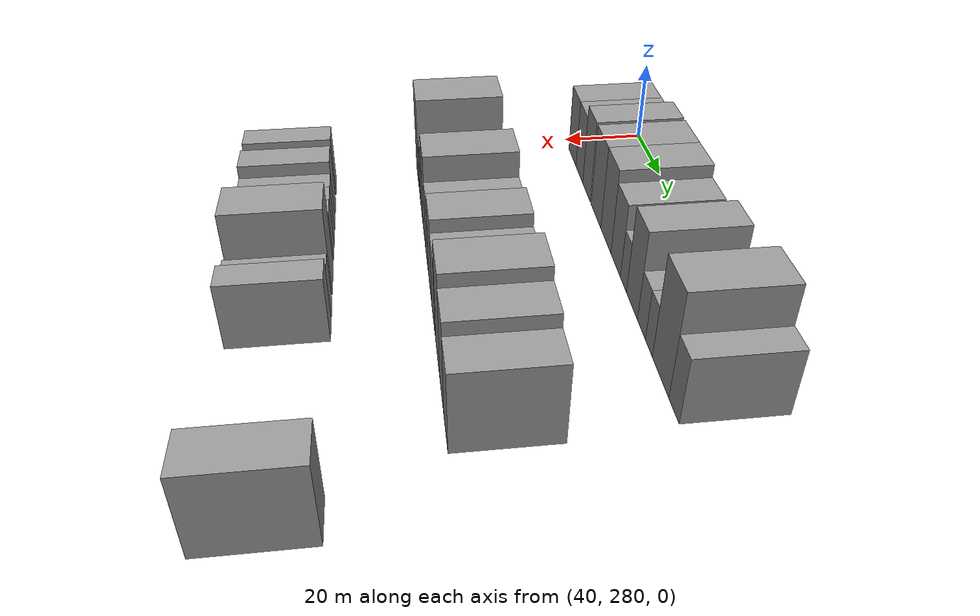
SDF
<sdf version="1.6">
 <world name="default">
  <model name="building_71">
   <static>1</static>
   <pose>50.0000 289.5243 0 0.000000 0.000000 0.000000</pose>
   <link name="link">
    <pose>0 0 9.00 0 0 0</pose>
    <collision name="collision"><geometry><box><size>20.0000 8.9375 18.0000</size></box></geometry></collision>
    <visual name="visual">
     <cast_shadows>0</cast_shadows>
     <geometry><box><size>20.0000 8.9375 18.0000</size></box></geometry>
     <material>
      <script>
       <uri>model://grey_wall/materials/scripts</uri>
       <uri>model://grey_wall/materials/textures</uri>
       <name>vrc/grey_wall</name>
      </script>
     </material>
    </visual>
   </link>
  </model>
  <model name="building_72">
   <static>1</static>
   <pose>50.0000 298.1298 0 0.000000 0.000000 0.000000</pose>
   <link name="link">
    <pose>0 0 9.00 0 0 0</pose>
    <collision name="collision"><geometry><box><size>20.0000 8.2735 18.0000</size></box></geometry></collision>
    <visual name="visual">
     <cast_shadows>0</cast_shadows>
     <geometry><box><size>20.0000 8.2735 18.0000</size></box></geometry>
     <material>
      <script>
       <uri>model://grey_wall/materials/scripts</uri>
       <uri>model://grey_wall/materials/textures</uri>
       <name>vrc/grey_wall</name>
      </script>
     </material>
    </visual>
   </link>
  </model>
  <model name="building_73">
   <static>1</static>
   <pose>50.0000 306.4680 0 0.000000 0.000000 0.000000</pose>
   <link name="link">
    <pose>0 0 10.50 0 0 0</pose>
    <collision name="collision"><geometry><box><size>20.0000 8.4028 21.0000</size></box></geometry></collision>
    <visual name="visual">
     <cast_shadows>0</cast_shadows>
     <geometry><box><size>20.0000 8.4028 21.0000</size></box></geometry>
     <material>
      <script>
       <uri>model://grey_wall/materials/scripts</uri>
       <uri>model://grey_wall/materials/textures</uri>
       <name>vrc/grey_wall</name>
      </script>
     </material>
    </visual>
   </link>
  </model>
  <model name="building_74">
   <static>1</static>
   <pose>50.0000 316.7912 0 0.000000 0.000000 0.000000</pose>
   <link name="link">
    <pose>0 0 10.50 0 0 0</pose>
    <collision name="collision"><geometry><box><size>20.0000 10.2438 21.0000</size></box></geometry></collision>
    <visual name="visual">
     <cast_shadows>0</cast_shadows>
     <geometry><box><size>20.0000 10.2438 21.0000</size></box></geometry>
     <material>
      <script>
       <uri>model://grey_wall/materials/scripts</uri>
       <uri>model://grey_wall/materials/textures</uri>
       <name>vrc/grey_wall</name>
      </script>
     </material>
    </visual>
   </link>
  </model>
  <model name="building_75">
   <static>1</static>
   <pose>50.0000 326.7842 0 0.000000 0.000000 0.000000</pose>
   <link name="link">
    <pose>0 0 10.50 0 0 0</pose>
    <collision name="collision"><geometry><box><size>20.0000 9.7421 21.0000</size></box></geometry></collision>
    <visual name="visual">
     <cast_shadows>0</cast_shadows>
     <geometry><box><size>20.0000 9.7421 21.0000</size></box></geometry>
     <material>
      <script>
       <uri>model://grey_wall/materials/scripts</uri>
       <uri>model://grey_wall/materials/textures</uri>
       <name>vrc/grey_wall</name>
      </script>
     </material>
    </visual>
   </link>
  </model>
  <model name="building_76">
   <static>1</static>
   <pose>50.0000 335.8999 0 0.000000 0.000000 0.000000</pose>
   <link name="link">
    <pose>0 0 9.00 0 0 0</pose>
    <collision name="collision"><geometry><box><size>20.0000 8.4894 18.0000</size></box></geometry></collision>
    <visual name="visual">
     <cast_shadows>0</cast_shadows>
     <geometry><box><size>20.0000 8.4894 18.0000</size></box></geometry>
     <material>
      <script>
       <uri>model://grey_wall/materials/scripts</uri>
       <uri>model://grey_wall/materials/textures</uri>
       <name>vrc/grey_wall</name>
      </script>
     </material>
    </visual>
   </link>
  </model>
  <model name="building_77">
   <static>1</static>
   <pose>50.0000 342.6423 0 0.000000 0.000000 0.000000</pose>
   <link name="link">
    <pose>0 0 6.00 0 0 0</pose>
    <collision name="collision"><geometry><box><size>20.0000 4.9955 12.0000</size></box></geometry></collision>
    <visual name="visual">
     <cast_shadows>0</cast_shadows>
     <geometry><box><size>20.0000 4.9955 12.0000</size></box></geometry>
     <material>
      <script>
       <uri>model://grey_wall/materials/scripts</uri>
       <uri>model://grey_wall/materials/textures</uri>
       <name>vrc/grey_wall</name>
      </script>
     </material>
    </visual>
   </link>
  </model>
  <model name="building_78">
   <static>1</static>
   <pose>50.0000 349.5223 0 0.000000 0.000000 0.000000</pose>
   <link name="link">
    <pose>0 0 10.50 0 0 0</pose>
    <collision name="collision"><geometry><box><size>20.0000 8.7647 21.0000</size></box></geometry></collision>
    <visual name="visual">
     <cast_shadows>0</cast_shadows>
     <geometry><box><size>20.0000 8.7647 21.0000</size></box></geometry>
     <material>
      <script>
       <uri>model://grey_wall/materials/scripts</uri>
       <uri>model://grey_wall/materials/textures</uri>
       <name>vrc/grey_wall</name>
      </script>
     </material>
    </visual>
   </link>
  </model>
  <model name="building_79">
   <static>1</static>
   <pose>50.0000 356.8424 0 0.000000 0.000000 0.000000</pose>
   <link name="link">
    <pose>0 0 6.00 0 0 0</pose>
    <collision name="collision"><geometry><box><size>20.0000 5.8755 12.0000</size></box></geometry></collision>
    <visual name="visual">
     <cast_shadows>0</cast_shadows>
     <geometry><box><size>20.0000 5.8755 12.0000</size></box></geometry>
     <material>
      <script>
       <uri>model://grey_wall/materials/scripts</uri>
       <uri>model://grey_wall/materials/textures</uri>
       <name>vrc/grey_wall</name>
      </script>
     </material>
    </visual>
   </link>
  </model>
  <model name="building_80">
   <static>1</static>
   <pose>50.0000 362.2302 0 0.000000 0.000000 0.000000</pose>
   <link name="link">
    <pose>0 0 6.00 0 0 0</pose>
    <collision name="collision"><geometry><box><size>20.0000 4.9001 12.0000</size></box></geometry></collision>
    <visual name="visual">
     <cast_shadows>0</cast_shadows>
     <geometry><box><size>20.0000 4.9001 12.0000</size></box></geometry>
     <material>
      <script>
       <uri>model://grey_wall/materials/scripts</uri>
       <uri>model://grey_wall/materials/textures</uri>
       <name>vrc/grey_wall</name>
      </script>
     </material>
    </visual>
   </link>
  </model>
  <model name="building_81">
   <static>1</static>
   <pose>50.0000 370.0656 0 0.000000 0.000000 0.000000</pose>
   <link name="link">
    <pose>0 0 12.00 0 0 0</pose>
    <collision name="collision"><geometry><box><size>20.0000 10.7706 24.0000</size></box></geometry></collision>
    <visual name="visual">
     <cast_shadows>0</cast_shadows>
     <geometry><box><size>20.0000 10.7706 24.0000</size></box></geometry>
     <material>
      <script>
       <uri>model://grey_wall/materials/scripts</uri>
       <uri>model://grey_wall/materials/textures</uri>
       <name>vrc/grey_wall</name>
      </script>
     </material>
    </visual>
   </link>
  </model>
  <model name="building_82">
   <static>1</static>
   <pose>50.0000 378.5061 0 0.000000 0.000000 0.000000</pose>
   <link name="link">
    <pose>0 0 7.50 0 0 0</pose>
    <collision name="collision"><geometry><box><size>20.0000 6.1104 15.0000</size></box></geometry></collision>
    <visual name="visual">
     <cast_shadows>0</cast_shadows>
     <geometry><box><size>20.0000 6.1104 15.0000</size></box></geometry>
     <material>
      <script>
       <uri>model://grey_wall/materials/scripts</uri>
       <uri>model://grey_wall/materials/textures</uri>
       <name>vrc/grey_wall</name>
      </script>
     </material>
    </visual>
   </link>
  </model>
  <model name="building_153">
   <static>1</static>
   <pose>90.0000 295.7193 0 0.000000 0.000000 0.000000</pose>
   <link name="link">
    <pose>0 0 12.00 0 0 0</pose>
    <collision name="collision"><geometry><box><size>20.0000 11.3239 24.0000</size></box></geometry></collision>
    <visual name="visual">
     <cast_shadows>0</cast_shadows>
     <geometry><box><size>20.0000 11.3239 24.0000</size></box></geometry>
     <material>
      <script>
       <uri>model://grey_wall/materials/scripts</uri>
       <uri>model://grey_wall/materials/textures</uri>
       <name>vrc/grey_wall</name>
      </script>
     </material>
    </visual>
   </link>
  </model>
  <model name="building_154">
   <static>1</static>
   <pose>90.0000 305.6078 0 0.000000 0.000000 0.000000</pose>
   <link name="link">
    <pose>0 0 7.50 0 0 0</pose>
    <collision name="collision"><geometry><box><size>20.0000 6.4530 15.0000</size></box></geometry></collision>
    <visual name="visual">
     <cast_shadows>0</cast_shadows>
     <geometry><box><size>20.0000 6.4530 15.0000</size></box></geometry>
     <material>
      <script>
       <uri>model://grey_wall/materials/scripts</uri>
       <uri>model://grey_wall/materials/textures</uri>
       <name>vrc/grey_wall</name>
      </script>
     </material>
    </visual>
   </link>
  </model>
  <model name="building_155">
   <static>1</static>
   <pose>90.0000 312.8525 0 0.000000 0.000000 0.000000</pose>
   <link name="link">
    <pose>0 0 9.00 0 0 0</pose>
    <collision name="collision"><geometry><box><size>20.0000 8.0364 18.0000</size></box></geometry></collision>
    <visual name="visual">
     <cast_shadows>0</cast_shadows>
     <geometry><box><size>20.0000 8.0364 18.0000</size></box></geometry>
     <material>
      <script>
       <uri>model://grey_wall/materials/scripts</uri>
       <uri>model://grey_wall/materials/textures</uri>
       <name>vrc/grey_wall</name>
      </script>
     </material>
    </visual>
   </link>
  </model>
  <model name="building_156">
   <static>1</static>
   <pose>90.0000 321.9127 0 0.000000 0.000000 0.000000</pose>
   <link name="link">
    <pose>0 0 12.00 0 0 0</pose>
    <collision name="collision"><geometry><box><size>20.0000 10.0841 24.0000</size></box></geometry></collision>
    <visual name="visual">
     <cast_shadows>0</cast_shadows>
     <geometry><box><size>20.0000 10.0841 24.0000</size></box></geometry>
     <material>
      <script>
       <uri>model://grey_wall/materials/scripts</uri>
       <uri>model://grey_wall/materials/textures</uri>
       <name>vrc/grey_wall</name>
      </script>
     </material>
    </visual>
   </link>
  </model>
  <model name="building_157">
   <static>1</static>
   <pose>90.0000 330.9572 0 0.000000 0.000000 0.000000</pose>
   <link name="link">
    <pose>0 0 9.00 0 0 0</pose>
    <collision name="collision"><geometry><box><size>20.0000 8.0049 18.0000</size></box></geometry></collision>
    <visual name="visual">
     <cast_shadows>0</cast_shadows>
     <geometry><box><size>20.0000 8.0049 18.0000</size></box></geometry>
     <material>
      <script>
       <uri>model://grey_wall/materials/scripts</uri>
       <uri>model://grey_wall/materials/textures</uri>
       <name>vrc/grey_wall</name>
      </script>
     </material>
    </visual>
   </link>
  </model>
  <model name="building_158">
   <static>1</static>
   <pose>90.0000 340.6823 0 0.000000 0.000000 0.000000</pose>
   <link name="link">
    <pose>0 0 10.50 0 0 0</pose>
    <collision name="collision"><geometry><box><size>20.0000 9.4453 21.0000</size></box></geometry></collision>
    <visual name="visual">
     <cast_shadows>0</cast_shadows>
     <geometry><box><size>20.0000 9.4453 21.0000</size></box></geometry>
     <material>
      <script>
       <uri>model://grey_wall/materials/scripts</uri>
       <uri>model://grey_wall/materials/textures</uri>
       <name>vrc/grey_wall</name>
      </script>
     </material>
    </visual>
   </link>
  </model>
  <model name="building_159">
   <static>1</static>
   <pose>90.0000 349.7319 0 0.000000 0.000000 0.000000</pose>
   <link name="link">
    <pose>0 0 9.00 0 0 0</pose>
    <collision name="collision"><geometry><box><size>20.0000 8.6540 18.0000</size></box></geometry></collision>
    <visual name="visual">
     <cast_shadows>0</cast_shadows>
     <geometry><box><size>20.0000 8.6540 18.0000</size></box></geometry>
     <material>
      <script>
       <uri>model://grey_wall/materials/scripts</uri>
       <uri>model://grey_wall/materials/textures</uri>
       <name>vrc/grey_wall</name>
      </script>
     </material>
    </visual>
   </link>
  </model>
  <model name="building_160">
   <static>1</static>
   <pose>90.0000 361.0702 0 0.000000 0.000000 0.000000</pose>
   <link name="link">
    <pose>0 0 12.00 0 0 0</pose>
    <collision name="collision"><geometry><box><size>20.0000 10.0228 24.0000</size></box></geometry></collision>
    <visual name="visual">
     <cast_shadows>0</cast_shadows>
     <geometry><box><size>20.0000 10.0228 24.0000</size></box></geometry>
     <material>
      <script>
       <uri>model://grey_wall/materials/scripts</uri>
       <uri>model://grey_wall/materials/textures</uri>
       <name>vrc/grey_wall</name>
      </script>
     </material>
    </visual>
   </link>
  </model>
  <model name="building_161">
   <static>1</static>
   <pose>90.0000 370.5065 0 0.000000 0.000000 0.000000</pose>
   <link name="link">
    <pose>0 0 10.50 0 0 0</pose>
    <collision name="collision"><geometry><box><size>20.0000 8.8497 21.0000</size></box></geometry></collision>
    <visual name="visual">
     <cast_shadows>0</cast_shadows>
     <geometry><box><size>20.0000 8.8497 21.0000</size></box></geometry>
     <material>
      <script>
       <uri>model://grey_wall/materials/scripts</uri>
       <uri>model://grey_wall/materials/textures</uri>
       <name>vrc/grey_wall</name>
      </script>
     </material>
    </visual>
   </link>
  </model>
  <model name="building_162">
   <static>1</static>
   <pose>90.0000 379.2963 0 0.000000 0.000000 0.000000</pose>
   <link name="link">
    <pose>0 0 9.00 0 0 0</pose>
    <collision name="collision"><geometry><box><size>20.0000 8.7299 18.0000</size></box></geometry></collision>
    <visual name="visual">
     <cast_shadows>0</cast_shadows>
     <geometry><box><size>20.0000 8.7299 18.0000</size></box></geometry>
     <material>
      <script>
       <uri>model://grey_wall/materials/scripts</uri>
       <uri>model://grey_wall/materials/textures</uri>
       <name>vrc/grey_wall</name>
      </script>
     </material>
    </visual>
   </link>
  </model>
  <model name="building_238">
   <static>1</static>
   <pose>130.0000 297.5098 0 0.000000 0.000000 0.000000</pose>
   <link name="link">
    <pose>0 0 7.50 0 0 0</pose>
    <collision name="collision"><geometry><box><size>20.0000 6.5503 15.0000</size></box></geometry></collision>
    <visual name="visual">
     <cast_shadows>0</cast_shadows>
     <geometry><box><size>20.0000 6.5503 15.0000</size></box></geometry>
     <material>
      <script>
       <uri>model://grey_wall/materials/scripts</uri>
       <uri>model://grey_wall/materials/textures</uri>
       <name>vrc/grey_wall</name>
      </script>
     </material>
    </visual>
   </link>
  </model>
  <model name="building_239">
   <static>1</static>
   <pose>130.0000 307.3921 0 0.000000 0.000000 0.000000</pose>
   <link name="link">
    <pose>0 0 7.50 0 0 0</pose>
    <collision name="collision"><geometry><box><size>20.0000 7.2142 15.0000</size></box></geometry></collision>
    <visual name="visual">
     <cast_shadows>0</cast_shadows>
     <geometry><box><size>20.0000 7.2142 15.0000</size></box></geometry>
     <material>
      <script>
       <uri>model://grey_wall/materials/scripts</uri>
       <uri>model://grey_wall/materials/textures</uri>
       <name>vrc/grey_wall</name>
      </script>
     </material>
    </visual>
   </link>
  </model>
  <model name="building_240">
   <static>1</static>
   <pose>130.0000 313.8521 0 0.000000 0.000000 0.000000</pose>
   <link name="link">
    <pose>0 0 6.00 0 0 0</pose>
    <collision name="collision"><geometry><box><size>20.0000 5.7059 12.0000</size></box></geometry></collision>
    <visual name="visual">
     <cast_shadows>0</cast_shadows>
     <geometry><box><size>20.0000 5.7059 12.0000</size></box></geometry>
     <material>
      <script>
       <uri>model://grey_wall/materials/scripts</uri>
       <uri>model://grey_wall/materials/textures</uri>
       <name>vrc/grey_wall</name>
      </script>
     </material>
    </visual>
   </link>
  </model>
  <model name="building_241">
   <static>1</static>
   <pose>130.0000 319.2367 0 0.000000 0.000000 0.000000</pose>
   <link name="link">
    <pose>0 0 6.00 0 0 0</pose>
    <collision name="collision"><geometry><box><size>20.0000 5.0632 12.0000</size></box></geometry></collision>
    <visual name="visual">
     <cast_shadows>0</cast_shadows>
     <geometry><box><size>20.0000 5.0632 12.0000</size></box></geometry>
     <material>
      <script>
       <uri>model://grey_wall/materials/scripts</uri>
       <uri>model://grey_wall/materials/textures</uri>
       <name>vrc/grey_wall</name>
      </script>
     </material>
    </visual>
   </link>
  </model>
  <model name="building_242">
   <static>1</static>
   <pose>130.0000 324.5809 0 0.000000 0.000000 0.000000</pose>
   <link name="link">
    <pose>0 0 6.00 0 0 0</pose>
    <collision name="collision"><geometry><box><size>20.0000 5.6252 12.0000</size></box></geometry></collision>
    <visual name="visual">
     <cast_shadows>0</cast_shadows>
     <geometry><box><size>20.0000 5.6252 12.0000</size></box></geometry>
     <material>
      <script>
       <uri>model://grey_wall/materials/scripts</uri>
       <uri>model://grey_wall/materials/textures</uri>
       <name>vrc/grey_wall</name>
      </script>
     </material>
    </visual>
   </link>
  </model>
  <model name="building_243">
   <static>1</static>
   <pose>130.0000 334.4191 0 0.000000 0.000000 0.000000</pose>
   <link name="link">
    <pose>0 0 10.50 0 0 0</pose>
    <collision name="collision"><geometry><box><size>20.0000 10.0511 21.0000</size></box></geometry></collision>
    <visual name="visual">
     <cast_shadows>0</cast_shadows>
     <geometry><box><size>20.0000 10.0511 21.0000</size></box></geometry>
     <material>
      <script>
       <uri>model://grey_wall/materials/scripts</uri>
       <uri>model://grey_wall/materials/textures</uri>
       <name>vrc/grey_wall</name>
      </script>
     </material>
    </visual>
   </link>
  </model>
  <model name="building_244">
   <static>1</static>
   <pose>130.0000 344.3195 0 0.000000 0.000000 0.000000</pose>
   <link name="link">
    <pose>0 0 6.00 0 0 0</pose>
    <collision name="collision"><geometry><box><size>20.0000 5.7496 12.0000</size></box></geometry></collision>
    <visual name="visual">
     <cast_shadows>0</cast_shadows>
     <geometry><box><size>20.0000 5.7496 12.0000</size></box></geometry>
     <material>
      <script>
       <uri>model://grey_wall/materials/scripts</uri>
       <uri>model://grey_wall/materials/textures</uri>
       <name>vrc/grey_wall</name>
      </script>
     </material>
    </visual>
   </link>
  </model>
  <model name="building_245">
   <static>1</static>
   <pose>130.0000 350.3728 0 0.000000 0.000000 0.000000</pose>
   <link name="link">
    <pose>0 0 7.50 0 0 0</pose>
    <collision name="collision"><geometry><box><size>20.0000 6.3570 15.0000</size></box></geometry></collision>
    <visual name="visual">
     <cast_shadows>0</cast_shadows>
     <geometry><box><size>20.0000 6.3570 15.0000</size></box></geometry>
     <material>
      <script>
       <uri>model://grey_wall/materials/scripts</uri>
       <uri>model://grey_wall/materials/textures</uri>
       <name>vrc/grey_wall</name>
      </script>
     </material>
    </visual>
   </link>
  </model>
  <model name="building_246">
   <static>1</static>
   <pose>130.0000 394.8746 0 0.000000 0.000000 0.000000</pose>
   <link name="link">
    <pose>0 0 9.00 0 0 0</pose>
    <collision name="collision"><geometry><box><size>20.0000 8.8822 18.0000</size></box></geometry></collision>
    <visual name="visual">
     <cast_shadows>0</cast_shadows>
     <geometry><box><size>20.0000 8.8822 18.0000</size></box></geometry>
     <material>
      <script>
       <uri>model://grey_wall/materials/scripts</uri>
       <uri>model://grey_wall/materials/textures</uri>
       <name>vrc/grey_wall</name>
      </script>
     </material>
    </visual>
   </link>
  </model>
 </world>
</sdf>
